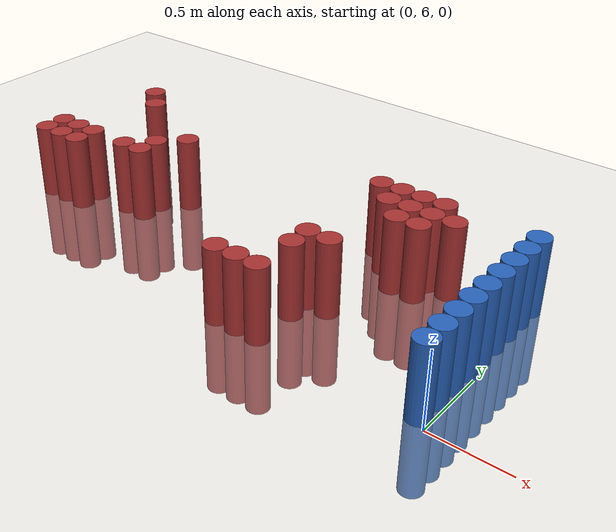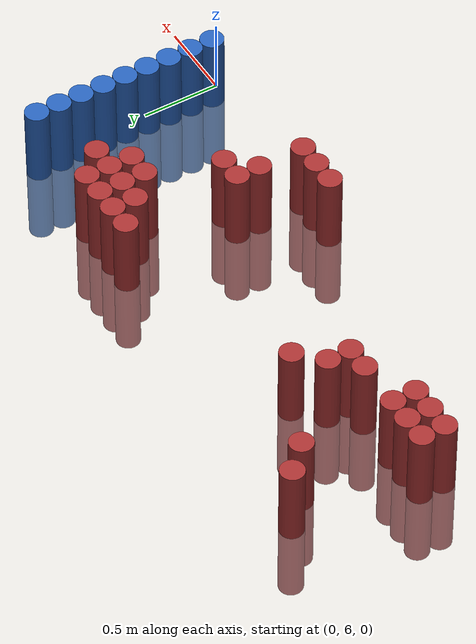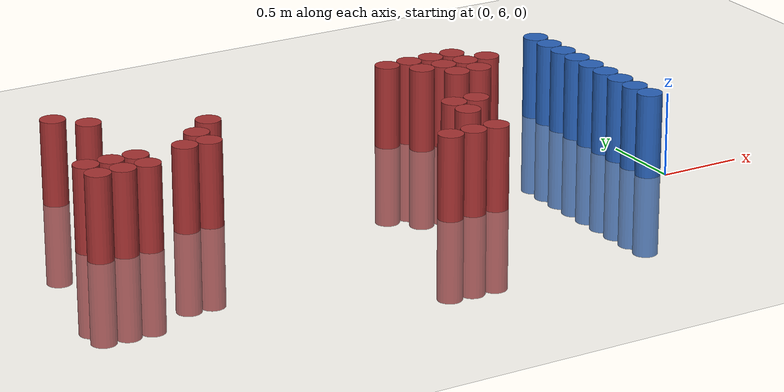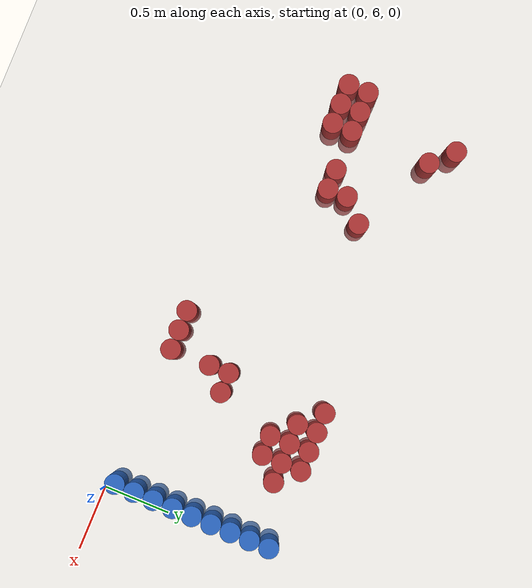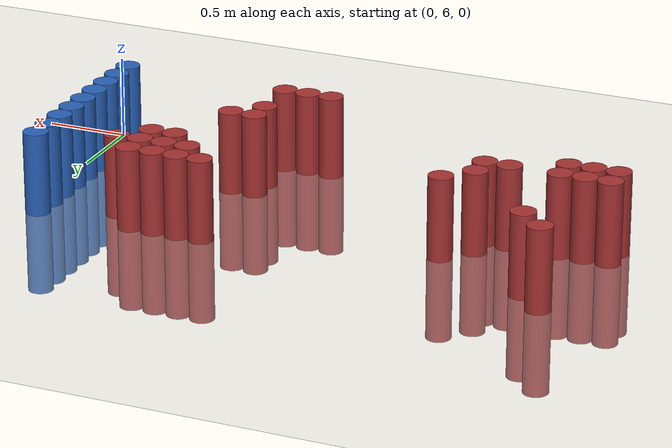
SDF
<sdf version="1.6">
 <world name="default">
  <model name="ground_plane">
   <static>1</static>
   <link name="link">
    <collision name="collision">
     <geometry><plane><normal>0 0 1</normal><size>100 100</size></plane></geometry>
     <surface><friction><ode><mu>100</mu><mu2>50</mu2></ode></friction></surface>
    </collision>
    <visual name="visual">
     <cast_shadows>0</cast_shadows>
     <geometry><plane><normal>0 0 1</normal><size>100 100</size></plane></geometry>
     <material>
      <script><uri>file://media/materials/scripts/gazebo.material</uri><name>Gazebo/Grey</name></script>
     </material>
    </visual>
   </link>
  </model>
  <model name="unit_cylinder_196">
   <static>1</static>
   <pose>-3.375000 6.525000 0.000000 0.000000 0.000000 0.000000</pose>
   <link name="link">
    <inertial>
     <mass>1</mass>
     <inertia><ixx>0.145833</ixx><ixy>0</ixy><ixz>0</ixz><iyy>0.145833</iyy><iyz>0</iyz><izz>0.125</izz></inertia>
    </inertial>
    <collision name="collision">
     <geometry><cylinder><radius>0.075000</radius><length>1</length></cylinder></geometry>
    </collision>
    <visual name="visual">
     <geometry><cylinder><radius>0.075000</radius><length>1</length></cylinder></geometry>
     <material>
      <ambient>0.648000 0.192000 0.192000 1</ambient>
      <diffuse>0.648000 0.192000 0.192000 1</diffuse>
     </material>
     <material>
      <script><name>Gazebo/Grey</name><uri>file://media/materials/scripts/gazebo.material</uri></script>
     </material>
    </visual>
    <sensor name="sensor_contact" type="contact"><contact><collision>collision</collision></contact></sensor>
   </link>
   <plugin filename="gz-sim-touchplugin-system" name="gz::sim::systems::TouchPlugin">
    <target>robot</target>
    <namespace>robot</namespace>
    <time>0.001</time>
    <enabled>true</enabled>
   </plugin>
  </model>
  <model name="unit_cylinder_197">
   <static>1</static>
   <pose>-3.375000 6.675000 0.000000 0.000000 0.000000 0.000000</pose>
   <link name="link">
    <inertial>
     <mass>1</mass>
     <inertia><ixx>0.145833</ixx><ixy>0</ixy><ixz>0</ixz><iyy>0.145833</iyy><iyz>0</iyz><izz>0.125</izz></inertia>
    </inertial>
    <collision name="collision">
     <geometry><cylinder><radius>0.075000</radius><length>1</length></cylinder></geometry>
    </collision>
    <visual name="visual">
     <geometry><cylinder><radius>0.075000</radius><length>1</length></cylinder></geometry>
     <material>
      <ambient>0.648000 0.192000 0.192000 1</ambient>
      <diffuse>0.648000 0.192000 0.192000 1</diffuse>
     </material>
     <material>
      <script><name>Gazebo/Grey</name><uri>file://media/materials/scripts/gazebo.material</uri></script>
     </material>
    </visual>
    <sensor name="sensor_contact" type="contact"><contact><collision>collision</collision></contact></sensor>
   </link>
   <plugin filename="gz-sim-touchplugin-system" name="gz::sim::systems::TouchPlugin">
    <target>robot</target>
    <namespace>robot</namespace>
    <time>0.001</time>
    <enabled>true</enabled>
   </plugin>
  </model>
  <model name="unit_cylinder_205">
   <static>1</static>
   <pose>-3.225000 6.525000 0.000000 0.000000 0.000000 0.000000</pose>
   <link name="link">
    <inertial>
     <mass>1</mass>
     <inertia><ixx>0.145833</ixx><ixy>0</ixy><ixz>0</ixz><iyy>0.145833</iyy><iyz>0</iyz><izz>0.125</izz></inertia>
    </inertial>
    <collision name="collision">
     <geometry><cylinder><radius>0.075000</radius><length>1</length></cylinder></geometry>
    </collision>
    <visual name="visual">
     <geometry><cylinder><radius>0.075000</radius><length>1</length></cylinder></geometry>
     <material>
      <ambient>0.648000 0.192000 0.192000 1</ambient>
      <diffuse>0.648000 0.192000 0.192000 1</diffuse>
     </material>
     <material>
      <script><name>Gazebo/Grey</name><uri>file://media/materials/scripts/gazebo.material</uri></script>
     </material>
    </visual>
    <sensor name="sensor_contact" type="contact"><contact><collision>collision</collision></contact></sensor>
   </link>
   <plugin filename="gz-sim-touchplugin-system" name="gz::sim::systems::TouchPlugin">
    <target>robot</target>
    <namespace>robot</namespace>
    <time>0.001</time>
    <enabled>true</enabled>
   </plugin>
  </model>
  <model name="unit_cylinder_206">
   <static>1</static>
   <pose>-3.225000 6.675000 0.000000 0.000000 0.000000 0.000000</pose>
   <link name="link">
    <inertial>
     <mass>1</mass>
     <inertia><ixx>0.145833</ixx><ixy>0</ixy><ixz>0</ixz><iyy>0.145833</iyy><iyz>0</iyz><izz>0.125</izz></inertia>
    </inertial>
    <collision name="collision">
     <geometry><cylinder><radius>0.075000</radius><length>1</length></cylinder></geometry>
    </collision>
    <visual name="visual">
     <geometry><cylinder><radius>0.075000</radius><length>1</length></cylinder></geometry>
     <material>
      <ambient>0.648000 0.192000 0.192000 1</ambient>
      <diffuse>0.648000 0.192000 0.192000 1</diffuse>
     </material>
     <material>
      <script><name>Gazebo/Grey</name><uri>file://media/materials/scripts/gazebo.material</uri></script>
     </material>
    </visual>
    <sensor name="sensor_contact" type="contact"><contact><collision>collision</collision></contact></sensor>
   </link>
   <plugin filename="gz-sim-touchplugin-system" name="gz::sim::systems::TouchPlugin">
    <target>robot</target>
    <namespace>robot</namespace>
    <time>0.001</time>
    <enabled>true</enabled>
   </plugin>
  </model>
  <model name="unit_cylinder_207">
   <static>1</static>
   <pose>-3.225000 7.425000 0.000000 0.000000 0.000000 0.000000</pose>
   <link name="link">
    <inertial>
     <mass>1</mass>
     <inertia><ixx>0.145833</ixx><ixy>0</ixy><ixz>0</ixz><iyy>0.145833</iyy><iyz>0</iyz><izz>0.125</izz></inertia>
    </inertial>
    <collision name="collision">
     <geometry><cylinder><radius>0.075000</radius><length>1</length></cylinder></geometry>
    </collision>
    <visual name="visual">
     <geometry><cylinder><radius>0.075000</radius><length>1</length></cylinder></geometry>
     <material>
      <ambient>0.648000 0.192000 0.192000 1</ambient>
      <diffuse>0.648000 0.192000 0.192000 1</diffuse>
     </material>
     <material>
      <script><name>Gazebo/Grey</name><uri>file://media/materials/scripts/gazebo.material</uri></script>
     </material>
    </visual>
    <sensor name="sensor_contact" type="contact"><contact><collision>collision</collision></contact></sensor>
   </link>
   <plugin filename="gz-sim-touchplugin-system" name="gz::sim::systems::TouchPlugin">
    <target>robot</target>
    <namespace>robot</namespace>
    <time>0.001</time>
    <enabled>true</enabled>
   </plugin>
  </model>
  <model name="unit_cylinder_210">
   <static>1</static>
   <pose>-3.075000 6.525000 0.000000 0.000000 0.000000 0.000000</pose>
   <link name="link">
    <inertial>
     <mass>1</mass>
     <inertia><ixx>0.145833</ixx><ixy>0</ixy><ixz>0</ixz><iyy>0.145833</iyy><iyz>0</iyz><izz>0.125</izz></inertia>
    </inertial>
    <collision name="collision">
     <geometry><cylinder><radius>0.075000</radius><length>1</length></cylinder></geometry>
    </collision>
    <visual name="visual">
     <geometry><cylinder><radius>0.075000</radius><length>1</length></cylinder></geometry>
     <material>
      <ambient>0.648000 0.192000 0.192000 1</ambient>
      <diffuse>0.648000 0.192000 0.192000 1</diffuse>
     </material>
     <material>
      <script><name>Gazebo/Grey</name><uri>file://media/materials/scripts/gazebo.material</uri></script>
     </material>
    </visual>
    <sensor name="sensor_contact" type="contact"><contact><collision>collision</collision></contact></sensor>
   </link>
   <plugin filename="gz-sim-touchplugin-system" name="gz::sim::systems::TouchPlugin">
    <target>robot</target>
    <namespace>robot</namespace>
    <time>0.001</time>
    <enabled>true</enabled>
   </plugin>
  </model>
  <model name="unit_cylinder_211">
   <static>1</static>
   <pose>-3.075000 6.675000 0.000000 0.000000 0.000000 0.000000</pose>
   <link name="link">
    <inertial>
     <mass>1</mass>
     <inertia><ixx>0.145833</ixx><ixy>0</ixy><ixz>0</ixz><iyy>0.145833</iyy><iyz>0</iyz><izz>0.125</izz></inertia>
    </inertial>
    <collision name="collision">
     <geometry><cylinder><radius>0.075000</radius><length>1</length></cylinder></geometry>
    </collision>
    <visual name="visual">
     <geometry><cylinder><radius>0.075000</radius><length>1</length></cylinder></geometry>
     <material>
      <ambient>0.648000 0.192000 0.192000 1</ambient>
      <diffuse>0.648000 0.192000 0.192000 1</diffuse>
     </material>
     <material>
      <script><name>Gazebo/Grey</name><uri>file://media/materials/scripts/gazebo.material</uri></script>
     </material>
    </visual>
    <sensor name="sensor_contact" type="contact"><contact><collision>collision</collision></contact></sensor>
   </link>
   <plugin filename="gz-sim-touchplugin-system" name="gz::sim::systems::TouchPlugin">
    <target>robot</target>
    <namespace>robot</namespace>
    <time>0.001</time>
    <enabled>true</enabled>
   </plugin>
  </model>
  <model name="unit_cylinder_212">
   <static>1</static>
   <pose>-3.075000 7.275000 0.000000 0.000000 0.000000 0.000000</pose>
   <link name="link">
    <inertial>
     <mass>1</mass>
     <inertia><ixx>0.145833</ixx><ixy>0</ixy><ixz>0</ixz><iyy>0.145833</iyy><iyz>0</iyz><izz>0.125</izz></inertia>
    </inertial>
    <collision name="collision">
     <geometry><cylinder><radius>0.075000</radius><length>1</length></cylinder></geometry>
    </collision>
    <visual name="visual">
     <geometry><cylinder><radius>0.075000</radius><length>1</length></cylinder></geometry>
     <material>
      <ambient>0.648000 0.192000 0.192000 1</ambient>
      <diffuse>0.648000 0.192000 0.192000 1</diffuse>
     </material>
     <material>
      <script><name>Gazebo/Grey</name><uri>file://media/materials/scripts/gazebo.material</uri></script>
     </material>
    </visual>
    <sensor name="sensor_contact" type="contact"><contact><collision>collision</collision></contact></sensor>
   </link>
   <plugin filename="gz-sim-touchplugin-system" name="gz::sim::systems::TouchPlugin">
    <target>robot</target>
    <namespace>robot</namespace>
    <time>0.001</time>
    <enabled>true</enabled>
   </plugin>
  </model>
  <model name="unit_cylinder_219">
   <static>1</static>
   <pose>-2.775000 6.675000 0.000000 0.000000 0.000000 0.000000</pose>
   <link name="link">
    <inertial>
     <mass>1</mass>
     <inertia><ixx>0.145833</ixx><ixy>0</ixy><ixz>0</ixz><iyy>0.145833</iyy><iyz>0</iyz><izz>0.125</izz></inertia>
    </inertial>
    <collision name="collision">
     <geometry><cylinder><radius>0.075000</radius><length>1</length></cylinder></geometry>
    </collision>
    <visual name="visual">
     <geometry><cylinder><radius>0.075000</radius><length>1</length></cylinder></geometry>
     <material>
      <ambient>0.648000 0.192000 0.192000 1</ambient>
      <diffuse>0.648000 0.192000 0.192000 1</diffuse>
     </material>
     <material>
      <script><name>Gazebo/Grey</name><uri>file://media/materials/scripts/gazebo.material</uri></script>
     </material>
    </visual>
    <sensor name="sensor_contact" type="contact"><contact><collision>collision</collision></contact></sensor>
   </link>
   <plugin filename="gz-sim-touchplugin-system" name="gz::sim::systems::TouchPlugin">
    <target>robot</target>
    <namespace>robot</namespace>
    <time>0.001</time>
    <enabled>true</enabled>
   </plugin>
  </model>
  <model name="unit_cylinder_222">
   <static>1</static>
   <pose>-2.625000 6.675000 0.000000 0.000000 0.000000 0.000000</pose>
   <link name="link">
    <inertial>
     <mass>1</mass>
     <inertia><ixx>0.145833</ixx><ixy>0</ixy><ixz>0</ixz><iyy>0.145833</iyy><iyz>0</iyz><izz>0.125</izz></inertia>
    </inertial>
    <collision name="collision">
     <geometry><cylinder><radius>0.075000</radius><length>1</length></cylinder></geometry>
    </collision>
    <visual name="visual">
     <geometry><cylinder><radius>0.075000</radius><length>1</length></cylinder></geometry>
     <material>
      <ambient>0.648000 0.192000 0.192000 1</ambient>
      <diffuse>0.648000 0.192000 0.192000 1</diffuse>
     </material>
     <material>
      <script><name>Gazebo/Grey</name><uri>file://media/materials/scripts/gazebo.material</uri></script>
     </material>
    </visual>
    <sensor name="sensor_contact" type="contact"><contact><collision>collision</collision></contact></sensor>
   </link>
   <plugin filename="gz-sim-touchplugin-system" name="gz::sim::systems::TouchPlugin">
    <target>robot</target>
    <namespace>robot</namespace>
    <time>0.001</time>
    <enabled>true</enabled>
   </plugin>
  </model>
  <model name="unit_cylinder_223">
   <static>1</static>
   <pose>-2.625000 6.825000 0.000000 0.000000 0.000000 0.000000</pose>
   <link name="link">
    <inertial>
     <mass>1</mass>
     <inertia><ixx>0.145833</ixx><ixy>0</ixy><ixz>0</ixz><iyy>0.145833</iyy><iyz>0</iyz><izz>0.125</izz></inertia>
    </inertial>
    <collision name="collision">
     <geometry><cylinder><radius>0.075000</radius><length>1</length></cylinder></geometry>
    </collision>
    <visual name="visual">
     <geometry><cylinder><radius>0.075000</radius><length>1</length></cylinder></geometry>
     <material>
      <ambient>0.648000 0.192000 0.192000 1</ambient>
      <diffuse>0.648000 0.192000 0.192000 1</diffuse>
     </material>
     <material>
      <script><name>Gazebo/Grey</name><uri>file://media/materials/scripts/gazebo.material</uri></script>
     </material>
    </visual>
    <sensor name="sensor_contact" type="contact"><contact><collision>collision</collision></contact></sensor>
   </link>
   <plugin filename="gz-sim-touchplugin-system" name="gz::sim::systems::TouchPlugin">
    <target>robot</target>
    <namespace>robot</namespace>
    <time>0.001</time>
    <enabled>true</enabled>
   </plugin>
  </model>
  <model name="unit_cylinder_226">
   <static>1</static>
   <pose>-2.475000 6.975000 0.000000 0.000000 0.000000 0.000000</pose>
   <link name="link">
    <inertial>
     <mass>1</mass>
     <inertia><ixx>0.145833</ixx><ixy>0</ixy><ixz>0</ixz><iyy>0.145833</iyy><iyz>0</iyz><izz>0.125</izz></inertia>
    </inertial>
    <collision name="collision">
     <geometry><cylinder><radius>0.075000</radius><length>1</length></cylinder></geometry>
    </collision>
    <visual name="visual">
     <geometry><cylinder><radius>0.075000</radius><length>1</length></cylinder></geometry>
     <material>
      <ambient>0.648000 0.192000 0.192000 1</ambient>
      <diffuse>0.648000 0.192000 0.192000 1</diffuse>
     </material>
     <material>
      <script><name>Gazebo/Grey</name><uri>file://media/materials/scripts/gazebo.material</uri></script>
     </material>
    </visual>
    <sensor name="sensor_contact" type="contact"><contact><collision>collision</collision></contact></sensor>
   </link>
   <plugin filename="gz-sim-touchplugin-system" name="gz::sim::systems::TouchPlugin">
    <target>robot</target>
    <namespace>robot</namespace>
    <time>0.001</time>
    <enabled>true</enabled>
   </plugin>
  </model>
  <model name="unit_cylinder_242">
   <static>1</static>
   <pose>-1.425000 6.075000 0.000000 0.000000 0.000000 0.000000</pose>
   <link name="link">
    <inertial>
     <mass>1</mass>
     <inertia><ixx>0.145833</ixx><ixy>0</ixy><ixz>0</ixz><iyy>0.145833</iyy><iyz>0</iyz><izz>0.125</izz></inertia>
    </inertial>
    <collision name="collision">
     <geometry><cylinder><radius>0.075000</radius><length>1</length></cylinder></geometry>
    </collision>
    <visual name="visual">
     <geometry><cylinder><radius>0.075000</radius><length>1</length></cylinder></geometry>
     <material>
      <ambient>0.648000 0.192000 0.192000 1</ambient>
      <diffuse>0.648000 0.192000 0.192000 1</diffuse>
     </material>
     <material>
      <script><name>Gazebo/Grey</name><uri>file://media/materials/scripts/gazebo.material</uri></script>
     </material>
    </visual>
    <sensor name="sensor_contact" type="contact"><contact><collision>collision</collision></contact></sensor>
   </link>
   <plugin filename="gz-sim-touchplugin-system" name="gz::sim::systems::TouchPlugin">
    <target>robot</target>
    <namespace>robot</namespace>
    <time>0.001</time>
    <enabled>true</enabled>
   </plugin>
  </model>
  <model name="unit_cylinder_244">
   <static>1</static>
   <pose>-1.275000 6.075000 0.000000 0.000000 0.000000 0.000000</pose>
   <link name="link">
    <inertial>
     <mass>1</mass>
     <inertia><ixx>0.145833</ixx><ixy>0</ixy><ixz>0</ixz><iyy>0.145833</iyy><iyz>0</iyz><izz>0.125</izz></inertia>
    </inertial>
    <collision name="collision">
     <geometry><cylinder><radius>0.075000</radius><length>1</length></cylinder></geometry>
    </collision>
    <visual name="visual">
     <geometry><cylinder><radius>0.075000</radius><length>1</length></cylinder></geometry>
     <material>
      <ambient>0.648000 0.192000 0.192000 1</ambient>
      <diffuse>0.648000 0.192000 0.192000 1</diffuse>
     </material>
     <material>
      <script><name>Gazebo/Grey</name><uri>file://media/materials/scripts/gazebo.material</uri></script>
     </material>
    </visual>
    <sensor name="sensor_contact" type="contact"><contact><collision>collision</collision></contact></sensor>
   </link>
   <plugin filename="gz-sim-touchplugin-system" name="gz::sim::systems::TouchPlugin">
    <target>robot</target>
    <namespace>robot</namespace>
    <time>0.001</time>
    <enabled>true</enabled>
   </plugin>
  </model>
  <model name="unit_cylinder_245">
   <static>1</static>
   <pose>-1.125000 6.075000 0.000000 0.000000 0.000000 0.000000</pose>
   <link name="link">
    <inertial>
     <mass>1</mass>
     <inertia><ixx>0.145833</ixx><ixy>0</ixy><ixz>0</ixz><iyy>0.145833</iyy><iyz>0</iyz><izz>0.125</izz></inertia>
    </inertial>
    <collision name="collision">
     <geometry><cylinder><radius>0.075000</radius><length>1</length></cylinder></geometry>
    </collision>
    <visual name="visual">
     <geometry><cylinder><radius>0.075000</radius><length>1</length></cylinder></geometry>
     <material>
      <ambient>0.648000 0.192000 0.192000 1</ambient>
      <diffuse>0.648000 0.192000 0.192000 1</diffuse>
     </material>
     <material>
      <script><name>Gazebo/Grey</name><uri>file://media/materials/scripts/gazebo.material</uri></script>
     </material>
    </visual>
    <sensor name="sensor_contact" type="contact"><contact><collision>collision</collision></contact></sensor>
   </link>
   <plugin filename="gz-sim-touchplugin-system" name="gz::sim::systems::TouchPlugin">
    <target>robot</target>
    <namespace>robot</namespace>
    <time>0.001</time>
    <enabled>true</enabled>
   </plugin>
  </model>
  <model name="unit_cylinder_246">
   <static>1</static>
   <pose>-1.125000 6.375000 0.000000 0.000000 0.000000 0.000000</pose>
   <link name="link">
    <inertial>
     <mass>1</mass>
     <inertia><ixx>0.145833</ixx><ixy>0</ixy><ixz>0</ixz><iyy>0.145833</iyy><iyz>0</iyz><izz>0.125</izz></inertia>
    </inertial>
    <collision name="collision">
     <geometry><cylinder><radius>0.075000</radius><length>1</length></cylinder></geometry>
    </collision>
    <visual name="visual">
     <geometry><cylinder><radius>0.075000</radius><length>1</length></cylinder></geometry>
     <material>
      <ambient>0.648000 0.192000 0.192000 1</ambient>
      <diffuse>0.648000 0.192000 0.192000 1</diffuse>
     </material>
     <material>
      <script><name>Gazebo/Grey</name><uri>file://media/materials/scripts/gazebo.material</uri></script>
     </material>
    </visual>
    <sensor name="sensor_contact" type="contact"><contact><collision>collision</collision></contact></sensor>
   </link>
   <plugin filename="gz-sim-touchplugin-system" name="gz::sim::systems::TouchPlugin">
    <target>robot</target>
    <namespace>robot</namespace>
    <time>0.001</time>
    <enabled>true</enabled>
   </plugin>
  </model>
  <model name="unit_cylinder_247">
   <static>1</static>
   <pose>-1.125000 6.525000 0.000000 0.000000 0.000000 0.000000</pose>
   <link name="link">
    <inertial>
     <mass>1</mass>
     <inertia><ixx>0.145833</ixx><ixy>0</ixy><ixz>0</ixz><iyy>0.145833</iyy><iyz>0</iyz><izz>0.125</izz></inertia>
    </inertial>
    <collision name="collision">
     <geometry><cylinder><radius>0.075000</radius><length>1</length></cylinder></geometry>
    </collision>
    <visual name="visual">
     <geometry><cylinder><radius>0.075000</radius><length>1</length></cylinder></geometry>
     <material>
      <ambient>0.648000 0.192000 0.192000 1</ambient>
      <diffuse>0.648000 0.192000 0.192000 1</diffuse>
     </material>
     <material>
      <script><name>Gazebo/Grey</name><uri>file://media/materials/scripts/gazebo.material</uri></script>
     </material>
    </visual>
    <sensor name="sensor_contact" type="contact"><contact><collision>collision</collision></contact></sensor>
   </link>
   <plugin filename="gz-sim-touchplugin-system" name="gz::sim::systems::TouchPlugin">
    <target>robot</target>
    <namespace>robot</namespace>
    <time>0.001</time>
    <enabled>true</enabled>
   </plugin>
  </model>
  <model name="unit_cylinder_248">
   <static>1</static>
   <pose>-1.125000 7.275000 0.000000 0.000000 0.000000 0.000000</pose>
   <link name="link">
    <inertial>
     <mass>1</mass>
     <inertia><ixx>0.145833</ixx><ixy>0</ixy><ixz>0</ixz><iyy>0.145833</iyy><iyz>0</iyz><izz>0.125</izz></inertia>
    </inertial>
    <collision name="collision">
     <geometry><cylinder><radius>0.075000</radius><length>1</length></cylinder></geometry>
    </collision>
    <visual name="visual">
     <geometry><cylinder><radius>0.075000</radius><length>1</length></cylinder></geometry>
     <material>
      <ambient>0.648000 0.192000 0.192000 1</ambient>
      <diffuse>0.648000 0.192000 0.192000 1</diffuse>
     </material>
     <material>
      <script><name>Gazebo/Grey</name><uri>file://media/materials/scripts/gazebo.material</uri></script>
     </material>
    </visual>
    <sensor name="sensor_contact" type="contact"><contact><collision>collision</collision></contact></sensor>
   </link>
   <plugin filename="gz-sim-touchplugin-system" name="gz::sim::systems::TouchPlugin">
    <target>robot</target>
    <namespace>robot</namespace>
    <time>0.001</time>
    <enabled>true</enabled>
   </plugin>
  </model>
  <model name="unit_cylinder_250">
   <static>1</static>
   <pose>-0.975000 6.525000 0.000000 0.000000 0.000000 0.000000</pose>
   <link name="link">
    <inertial>
     <mass>1</mass>
     <inertia><ixx>0.145833</ixx><ixy>0</ixy><ixz>0</ixz><iyy>0.145833</iyy><iyz>0</iyz><izz>0.125</izz></inertia>
    </inertial>
    <collision name="collision">
     <geometry><cylinder><radius>0.075000</radius><length>1</length></cylinder></geometry>
    </collision>
    <visual name="visual">
     <geometry><cylinder><radius>0.075000</radius><length>1</length></cylinder></geometry>
     <material>
      <ambient>0.648000 0.192000 0.192000 1</ambient>
      <diffuse>0.648000 0.192000 0.192000 1</diffuse>
     </material>
     <material>
      <script><name>Gazebo/Grey</name><uri>file://media/materials/scripts/gazebo.material</uri></script>
     </material>
    </visual>
    <sensor name="sensor_contact" type="contact"><contact><collision>collision</collision></contact></sensor>
   </link>
   <plugin filename="gz-sim-touchplugin-system" name="gz::sim::systems::TouchPlugin">
    <target>robot</target>
    <namespace>robot</namespace>
    <time>0.001</time>
    <enabled>true</enabled>
   </plugin>
  </model>
  <model name="unit_cylinder_251">
   <static>1</static>
   <pose>-0.975000 7.125000 0.000000 0.000000 0.000000 0.000000</pose>
   <link name="link">
    <inertial>
     <mass>1</mass>
     <inertia><ixx>0.145833</ixx><ixy>0</ixy><ixz>0</ixz><iyy>0.145833</iyy><iyz>0</iyz><izz>0.125</izz></inertia>
    </inertial>
    <collision name="collision">
     <geometry><cylinder><radius>0.075000</radius><length>1</length></cylinder></geometry>
    </collision>
    <visual name="visual">
     <geometry><cylinder><radius>0.075000</radius><length>1</length></cylinder></geometry>
     <material>
      <ambient>0.648000 0.192000 0.192000 1</ambient>
      <diffuse>0.648000 0.192000 0.192000 1</diffuse>
     </material>
     <material>
      <script><name>Gazebo/Grey</name><uri>file://media/materials/scripts/gazebo.material</uri></script>
     </material>
    </visual>
    <sensor name="sensor_contact" type="contact"><contact><collision>collision</collision></contact></sensor>
   </link>
   <plugin filename="gz-sim-touchplugin-system" name="gz::sim::systems::TouchPlugin">
    <target>robot</target>
    <namespace>robot</namespace>
    <time>0.001</time>
    <enabled>true</enabled>
   </plugin>
  </model>
  <model name="unit_cylinder_252">
   <static>1</static>
   <pose>-0.975000 7.275000 0.000000 0.000000 0.000000 0.000000</pose>
   <link name="link">
    <inertial>
     <mass>1</mass>
     <inertia><ixx>0.145833</ixx><ixy>0</ixy><ixz>0</ixz><iyy>0.145833</iyy><iyz>0</iyz><izz>0.125</izz></inertia>
    </inertial>
    <collision name="collision">
     <geometry><cylinder><radius>0.075000</radius><length>1</length></cylinder></geometry>
    </collision>
    <visual name="visual">
     <geometry><cylinder><radius>0.075000</radius><length>1</length></cylinder></geometry>
     <material>
      <ambient>0.648000 0.192000 0.192000 1</ambient>
      <diffuse>0.648000 0.192000 0.192000 1</diffuse>
     </material>
     <material>
      <script><name>Gazebo/Grey</name><uri>file://media/materials/scripts/gazebo.material</uri></script>
     </material>
    </visual>
    <sensor name="sensor_contact" type="contact"><contact><collision>collision</collision></contact></sensor>
   </link>
   <plugin filename="gz-sim-touchplugin-system" name="gz::sim::systems::TouchPlugin">
    <target>robot</target>
    <namespace>robot</namespace>
    <time>0.001</time>
    <enabled>true</enabled>
   </plugin>
  </model>
  <model name="unit_cylinder_258">
   <static>1</static>
   <pose>-0.825000 6.975000 0.000000 0.000000 0.000000 0.000000</pose>
   <link name="link">
    <inertial>
     <mass>1</mass>
     <inertia><ixx>0.145833</ixx><ixy>0</ixy><ixz>0</ixz><iyy>0.145833</iyy><iyz>0</iyz><izz>0.125</izz></inertia>
    </inertial>
    <collision name="collision">
     <geometry><cylinder><radius>0.075000</radius><length>1</length></cylinder></geometry>
    </collision>
    <visual name="visual">
     <geometry><cylinder><radius>0.075000</radius><length>1</length></cylinder></geometry>
     <material>
      <ambient>0.648000 0.192000 0.192000 1</ambient>
      <diffuse>0.648000 0.192000 0.192000 1</diffuse>
     </material>
     <material>
      <script><name>Gazebo/Grey</name><uri>file://media/materials/scripts/gazebo.material</uri></script>
     </material>
    </visual>
    <sensor name="sensor_contact" type="contact"><contact><collision>collision</collision></contact></sensor>
   </link>
   <plugin filename="gz-sim-touchplugin-system" name="gz::sim::systems::TouchPlugin">
    <target>robot</target>
    <namespace>robot</namespace>
    <time>0.001</time>
    <enabled>true</enabled>
   </plugin>
  </model>
  <model name="unit_cylinder_259">
   <static>1</static>
   <pose>-0.825000 7.125000 0.000000 0.000000 0.000000 0.000000</pose>
   <link name="link">
    <inertial>
     <mass>1</mass>
     <inertia><ixx>0.145833</ixx><ixy>0</ixy><ixz>0</ixz><iyy>0.145833</iyy><iyz>0</iyz><izz>0.125</izz></inertia>
    </inertial>
    <collision name="collision">
     <geometry><cylinder><radius>0.075000</radius><length>1</length></cylinder></geometry>
    </collision>
    <visual name="visual">
     <geometry><cylinder><radius>0.075000</radius><length>1</length></cylinder></geometry>
     <material>
      <ambient>0.648000 0.192000 0.192000 1</ambient>
      <diffuse>0.648000 0.192000 0.192000 1</diffuse>
     </material>
     <material>
      <script><name>Gazebo/Grey</name><uri>file://media/materials/scripts/gazebo.material</uri></script>
     </material>
    </visual>
    <sensor name="sensor_contact" type="contact"><contact><collision>collision</collision></contact></sensor>
   </link>
   <plugin filename="gz-sim-touchplugin-system" name="gz::sim::systems::TouchPlugin">
    <target>robot</target>
    <namespace>robot</namespace>
    <time>0.001</time>
    <enabled>true</enabled>
   </plugin>
  </model>
  <model name="unit_cylinder_260">
   <static>1</static>
   <pose>-0.825000 7.275000 0.000000 0.000000 0.000000 0.000000</pose>
   <link name="link">
    <inertial>
     <mass>1</mass>
     <inertia><ixx>0.145833</ixx><ixy>0</ixy><ixz>0</ixz><iyy>0.145833</iyy><iyz>0</iyz><izz>0.125</izz></inertia>
    </inertial>
    <collision name="collision">
     <geometry><cylinder><radius>0.075000</radius><length>1</length></cylinder></geometry>
    </collision>
    <visual name="visual">
     <geometry><cylinder><radius>0.075000</radius><length>1</length></cylinder></geometry>
     <material>
      <ambient>0.648000 0.192000 0.192000 1</ambient>
      <diffuse>0.648000 0.192000 0.192000 1</diffuse>
     </material>
     <material>
      <script><name>Gazebo/Grey</name><uri>file://media/materials/scripts/gazebo.material</uri></script>
     </material>
    </visual>
    <sensor name="sensor_contact" type="contact"><contact><collision>collision</collision></contact></sensor>
   </link>
   <plugin filename="gz-sim-touchplugin-system" name="gz::sim::systems::TouchPlugin">
    <target>robot</target>
    <namespace>robot</namespace>
    <time>0.001</time>
    <enabled>true</enabled>
   </plugin>
  </model>
  <model name="unit_cylinder_268">
   <static>1</static>
   <pose>-0.675000 6.975000 0.000000 0.000000 0.000000 0.000000</pose>
   <link name="link">
    <inertial>
     <mass>1</mass>
     <inertia><ixx>0.145833</ixx><ixy>0</ixy><ixz>0</ixz><iyy>0.145833</iyy><iyz>0</iyz><izz>0.125</izz></inertia>
    </inertial>
    <collision name="collision">
     <geometry><cylinder><radius>0.075000</radius><length>1</length></cylinder></geometry>
    </collision>
    <visual name="visual">
     <geometry><cylinder><radius>0.075000</radius><length>1</length></cylinder></geometry>
     <material>
      <ambient>0.648000 0.192000 0.192000 1</ambient>
      <diffuse>0.648000 0.192000 0.192000 1</diffuse>
     </material>
     <material>
      <script><name>Gazebo/Grey</name><uri>file://media/materials/scripts/gazebo.material</uri></script>
     </material>
    </visual>
    <sensor name="sensor_contact" type="contact"><contact><collision>collision</collision></contact></sensor>
   </link>
   <plugin filename="gz-sim-touchplugin-system" name="gz::sim::systems::TouchPlugin">
    <target>robot</target>
    <namespace>robot</namespace>
    <time>0.001</time>
    <enabled>true</enabled>
   </plugin>
  </model>
  <model name="unit_cylinder_269">
   <static>1</static>
   <pose>-0.675000 7.125000 0.000000 0.000000 0.000000 0.000000</pose>
   <link name="link">
    <inertial>
     <mass>1</mass>
     <inertia><ixx>0.145833</ixx><ixy>0</ixy><ixz>0</ixz><iyy>0.145833</iyy><iyz>0</iyz><izz>0.125</izz></inertia>
    </inertial>
    <collision name="collision">
     <geometry><cylinder><radius>0.075000</radius><length>1</length></cylinder></geometry>
    </collision>
    <visual name="visual">
     <geometry><cylinder><radius>0.075000</radius><length>1</length></cylinder></geometry>
     <material>
      <ambient>0.648000 0.192000 0.192000 1</ambient>
      <diffuse>0.648000 0.192000 0.192000 1</diffuse>
     </material>
     <material>
      <script><name>Gazebo/Grey</name><uri>file://media/materials/scripts/gazebo.material</uri></script>
     </material>
    </visual>
    <sensor name="sensor_contact" type="contact"><contact><collision>collision</collision></contact></sensor>
   </link>
   <plugin filename="gz-sim-touchplugin-system" name="gz::sim::systems::TouchPlugin">
    <target>robot</target>
    <namespace>robot</namespace>
    <time>0.001</time>
    <enabled>true</enabled>
   </plugin>
  </model>
  <model name="unit_cylinder_270">
   <static>1</static>
   <pose>-0.675000 7.275000 0.000000 0.000000 0.000000 0.000000</pose>
   <link name="link">
    <inertial>
     <mass>1</mass>
     <inertia><ixx>0.145833</ixx><ixy>0</ixy><ixz>0</ixz><iyy>0.145833</iyy><iyz>0</iyz><izz>0.125</izz></inertia>
    </inertial>
    <collision name="collision">
     <geometry><cylinder><radius>0.075000</radius><length>1</length></cylinder></geometry>
    </collision>
    <visual name="visual">
     <geometry><cylinder><radius>0.075000</radius><length>1</length></cylinder></geometry>
     <material>
      <ambient>0.648000 0.192000 0.192000 1</ambient>
      <diffuse>0.648000 0.192000 0.192000 1</diffuse>
     </material>
     <material>
      <script><name>Gazebo/Grey</name><uri>file://media/materials/scripts/gazebo.material</uri></script>
     </material>
    </visual>
    <sensor name="sensor_contact" type="contact"><contact><collision>collision</collision></contact></sensor>
   </link>
   <plugin filename="gz-sim-touchplugin-system" name="gz::sim::systems::TouchPlugin">
    <target>robot</target>
    <namespace>robot</namespace>
    <time>0.001</time>
    <enabled>true</enabled>
   </plugin>
  </model>
  <model name="unit_cylinder_277">
   <static>1</static>
   <pose>-0.525000 7.125000 0.000000 0.000000 0.000000 0.000000</pose>
   <link name="link">
    <inertial>
     <mass>1</mass>
     <inertia><ixx>0.145833</ixx><ixy>0</ixy><ixz>0</ixz><iyy>0.145833</iyy><iyz>0</iyz><izz>0.125</izz></inertia>
    </inertial>
    <collision name="collision">
     <geometry><cylinder><radius>0.075000</radius><length>1</length></cylinder></geometry>
    </collision>
    <visual name="visual">
     <geometry><cylinder><radius>0.075000</radius><length>1</length></cylinder></geometry>
     <material>
      <ambient>0.648000 0.192000 0.192000 1</ambient>
      <diffuse>0.648000 0.192000 0.192000 1</diffuse>
     </material>
     <material>
      <script><name>Gazebo/Grey</name><uri>file://media/materials/scripts/gazebo.material</uri></script>
     </material>
    </visual>
    <sensor name="sensor_contact" type="contact"><contact><collision>collision</collision></contact></sensor>
   </link>
   <plugin filename="gz-sim-touchplugin-system" name="gz::sim::systems::TouchPlugin">
    <target>robot</target>
    <namespace>robot</namespace>
    <time>0.001</time>
    <enabled>true</enabled>
   </plugin>
  </model>
  <model name="unit_cylinder_309">
   <static>1</static>
   <pose>-0.075000 6.075000 0.000000 0.000000 0.000000 0.000000</pose>
   <link name="link">
    <inertial>
     <mass>1</mass>
     <inertia><ixx>0.145833</ixx><ixy>0</ixy><ixz>0</ixz><iyy>0.145833</iyy><iyz>0</iyz><izz>0.125</izz></inertia>
    </inertial>
    <collision name="collision">
     <geometry><cylinder><radius>0.075000</radius><length>1</length></cylinder></geometry>
    </collision>
    <visual name="visual">
     <geometry><cylinder><radius>0.075000</radius><length>1</length></cylinder></geometry>
     <material>
      <ambient>0.152000 0.379000 0.720000 1</ambient>
      <diffuse>0.152000 0.379000 0.720000 1</diffuse>
     </material>
     <material>
      <script><name>Gazebo/Grey</name><uri>file://media/materials/scripts/gazebo.material</uri></script>
     </material>
    </visual>
    <sensor name="sensor_contact" type="contact"><contact><collision>collision</collision></contact></sensor>
   </link>
   <plugin filename="gz-sim-touchplugin-system" name="gz::sim::systems::TouchPlugin">
    <target>robot</target>
    <namespace>robot</namespace>
    <time>0.001</time>
    <enabled>true</enabled>
   </plugin>
  </model>
  <model name="unit_cylinder_310">
   <static>1</static>
   <pose>-0.075000 6.225000 0.000000 0.000000 0.000000 0.000000</pose>
   <link name="link">
    <inertial>
     <mass>1</mass>
     <inertia><ixx>0.145833</ixx><ixy>0</ixy><ixz>0</ixz><iyy>0.145833</iyy><iyz>0</iyz><izz>0.125</izz></inertia>
    </inertial>
    <collision name="collision">
     <geometry><cylinder><radius>0.075000</radius><length>1</length></cylinder></geometry>
    </collision>
    <visual name="visual">
     <geometry><cylinder><radius>0.075000</radius><length>1</length></cylinder></geometry>
     <material>
      <ambient>0.152000 0.379000 0.720000 1</ambient>
      <diffuse>0.152000 0.379000 0.720000 1</diffuse>
     </material>
     <material>
      <script><name>Gazebo/Grey</name><uri>file://media/materials/scripts/gazebo.material</uri></script>
     </material>
    </visual>
    <sensor name="sensor_contact" type="contact"><contact><collision>collision</collision></contact></sensor>
   </link>
   <plugin filename="gz-sim-touchplugin-system" name="gz::sim::systems::TouchPlugin">
    <target>robot</target>
    <namespace>robot</namespace>
    <time>0.001</time>
    <enabled>true</enabled>
   </plugin>
  </model>
  <model name="unit_cylinder_311">
   <static>1</static>
   <pose>-0.075000 6.375000 0.000000 0.000000 0.000000 0.000000</pose>
   <link name="link">
    <inertial>
     <mass>1</mass>
     <inertia><ixx>0.145833</ixx><ixy>0</ixy><ixz>0</ixz><iyy>0.145833</iyy><iyz>0</iyz><izz>0.125</izz></inertia>
    </inertial>
    <collision name="collision">
     <geometry><cylinder><radius>0.075000</radius><length>1</length></cylinder></geometry>
    </collision>
    <visual name="visual">
     <geometry><cylinder><radius>0.075000</radius><length>1</length></cylinder></geometry>
     <material>
      <ambient>0.152000 0.379000 0.720000 1</ambient>
      <diffuse>0.152000 0.379000 0.720000 1</diffuse>
     </material>
     <material>
      <script><name>Gazebo/Grey</name><uri>file://media/materials/scripts/gazebo.material</uri></script>
     </material>
    </visual>
    <sensor name="sensor_contact" type="contact"><contact><collision>collision</collision></contact></sensor>
   </link>
   <plugin filename="gz-sim-touchplugin-system" name="gz::sim::systems::TouchPlugin">
    <target>robot</target>
    <namespace>robot</namespace>
    <time>0.001</time>
    <enabled>true</enabled>
   </plugin>
  </model>
  <model name="unit_cylinder_312">
   <static>1</static>
   <pose>-0.075000 6.525000 0.000000 0.000000 0.000000 0.000000</pose>
   <link name="link">
    <inertial>
     <mass>1</mass>
     <inertia><ixx>0.145833</ixx><ixy>0</ixy><ixz>0</ixz><iyy>0.145833</iyy><iyz>0</iyz><izz>0.125</izz></inertia>
    </inertial>
    <collision name="collision">
     <geometry><cylinder><radius>0.075000</radius><length>1</length></cylinder></geometry>
    </collision>
    <visual name="visual">
     <geometry><cylinder><radius>0.075000</radius><length>1</length></cylinder></geometry>
     <material>
      <ambient>0.152000 0.379000 0.720000 1</ambient>
      <diffuse>0.152000 0.379000 0.720000 1</diffuse>
     </material>
     <material>
      <script><name>Gazebo/Grey</name><uri>file://media/materials/scripts/gazebo.material</uri></script>
     </material>
    </visual>
    <sensor name="sensor_contact" type="contact"><contact><collision>collision</collision></contact></sensor>
   </link>
   <plugin filename="gz-sim-touchplugin-system" name="gz::sim::systems::TouchPlugin">
    <target>robot</target>
    <namespace>robot</namespace>
    <time>0.001</time>
    <enabled>true</enabled>
   </plugin>
  </model>
  <model name="unit_cylinder_313">
   <static>1</static>
   <pose>-0.075000 6.675000 0.000000 0.000000 0.000000 0.000000</pose>
   <link name="link">
    <inertial>
     <mass>1</mass>
     <inertia><ixx>0.145833</ixx><ixy>0</ixy><ixz>0</ixz><iyy>0.145833</iyy><iyz>0</iyz><izz>0.125</izz></inertia>
    </inertial>
    <collision name="collision">
     <geometry><cylinder><radius>0.075000</radius><length>1</length></cylinder></geometry>
    </collision>
    <visual name="visual">
     <geometry><cylinder><radius>0.075000</radius><length>1</length></cylinder></geometry>
     <material>
      <ambient>0.152000 0.379000 0.720000 1</ambient>
      <diffuse>0.152000 0.379000 0.720000 1</diffuse>
     </material>
     <material>
      <script><name>Gazebo/Grey</name><uri>file://media/materials/scripts/gazebo.material</uri></script>
     </material>
    </visual>
    <sensor name="sensor_contact" type="contact"><contact><collision>collision</collision></contact></sensor>
   </link>
   <plugin filename="gz-sim-touchplugin-system" name="gz::sim::systems::TouchPlugin">
    <target>robot</target>
    <namespace>robot</namespace>
    <time>0.001</time>
    <enabled>true</enabled>
   </plugin>
  </model>
  <model name="unit_cylinder_314">
   <static>1</static>
   <pose>-0.075000 6.825000 0.000000 0.000000 0.000000 0.000000</pose>
   <link name="link">
    <inertial>
     <mass>1</mass>
     <inertia><ixx>0.145833</ixx><ixy>0</ixy><ixz>0</ixz><iyy>0.145833</iyy><iyz>0</iyz><izz>0.125</izz></inertia>
    </inertial>
    <collision name="collision">
     <geometry><cylinder><radius>0.075000</radius><length>1</length></cylinder></geometry>
    </collision>
    <visual name="visual">
     <geometry><cylinder><radius>0.075000</radius><length>1</length></cylinder></geometry>
     <material>
      <ambient>0.152000 0.379000 0.720000 1</ambient>
      <diffuse>0.152000 0.379000 0.720000 1</diffuse>
     </material>
     <material>
      <script><name>Gazebo/Grey</name><uri>file://media/materials/scripts/gazebo.material</uri></script>
     </material>
    </visual>
    <sensor name="sensor_contact" type="contact"><contact><collision>collision</collision></contact></sensor>
   </link>
   <plugin filename="gz-sim-touchplugin-system" name="gz::sim::systems::TouchPlugin">
    <target>robot</target>
    <namespace>robot</namespace>
    <time>0.001</time>
    <enabled>true</enabled>
   </plugin>
  </model>
  <model name="unit_cylinder_315">
   <static>1</static>
   <pose>-0.075000 6.975000 0.000000 0.000000 0.000000 0.000000</pose>
   <link name="link">
    <inertial>
     <mass>1</mass>
     <inertia><ixx>0.145833</ixx><ixy>0</ixy><ixz>0</ixz><iyy>0.145833</iyy><iyz>0</iyz><izz>0.125</izz></inertia>
    </inertial>
    <collision name="collision">
     <geometry><cylinder><radius>0.075000</radius><length>1</length></cylinder></geometry>
    </collision>
    <visual name="visual">
     <geometry><cylinder><radius>0.075000</radius><length>1</length></cylinder></geometry>
     <material>
      <ambient>0.152000 0.379000 0.720000 1</ambient>
      <diffuse>0.152000 0.379000 0.720000 1</diffuse>
     </material>
     <material>
      <script><name>Gazebo/Grey</name><uri>file://media/materials/scripts/gazebo.material</uri></script>
     </material>
    </visual>
    <sensor name="sensor_contact" type="contact"><contact><collision>collision</collision></contact></sensor>
   </link>
   <plugin filename="gz-sim-touchplugin-system" name="gz::sim::systems::TouchPlugin">
    <target>robot</target>
    <namespace>robot</namespace>
    <time>0.001</time>
    <enabled>true</enabled>
   </plugin>
  </model>
  <model name="unit_cylinder_316">
   <static>1</static>
   <pose>-0.075000 7.125000 0.000000 0.000000 0.000000 0.000000</pose>
   <link name="link">
    <inertial>
     <mass>1</mass>
     <inertia><ixx>0.145833</ixx><ixy>0</ixy><ixz>0</ixz><iyy>0.145833</iyy><iyz>0</iyz><izz>0.125</izz></inertia>
    </inertial>
    <collision name="collision">
     <geometry><cylinder><radius>0.075000</radius><length>1</length></cylinder></geometry>
    </collision>
    <visual name="visual">
     <geometry><cylinder><radius>0.075000</radius><length>1</length></cylinder></geometry>
     <material>
      <ambient>0.152000 0.379000 0.720000 1</ambient>
      <diffuse>0.152000 0.379000 0.720000 1</diffuse>
     </material>
     <material>
      <script><name>Gazebo/Grey</name><uri>file://media/materials/scripts/gazebo.material</uri></script>
     </material>
    </visual>
    <sensor name="sensor_contact" type="contact"><contact><collision>collision</collision></contact></sensor>
   </link>
   <plugin filename="gz-sim-touchplugin-system" name="gz::sim::systems::TouchPlugin">
    <target>robot</target>
    <namespace>robot</namespace>
    <time>0.001</time>
    <enabled>true</enabled>
   </plugin>
  </model>
  <model name="unit_cylinder_317">
   <static>1</static>
   <pose>-0.075000 7.275000 0.000000 0.000000 0.000000 0.000000</pose>
   <link name="link">
    <inertial>
     <mass>1</mass>
     <inertia><ixx>0.145833</ixx><ixy>0</ixy><ixz>0</ixz><iyy>0.145833</iyy><iyz>0</iyz><izz>0.125</izz></inertia>
    </inertial>
    <collision name="collision">
     <geometry><cylinder><radius>0.075000</radius><length>1</length></cylinder></geometry>
    </collision>
    <visual name="visual">
     <geometry><cylinder><radius>0.075000</radius><length>1</length></cylinder></geometry>
     <material>
      <ambient>0.152000 0.379000 0.720000 1</ambient>
      <diffuse>0.152000 0.379000 0.720000 1</diffuse>
     </material>
     <material>
      <script><name>Gazebo/Grey</name><uri>file://media/materials/scripts/gazebo.material</uri></script>
     </material>
    </visual>
    <sensor name="sensor_contact" type="contact"><contact><collision>collision</collision></contact></sensor>
   </link>
   <plugin filename="gz-sim-touchplugin-system" name="gz::sim::systems::TouchPlugin">
    <target>robot</target>
    <namespace>robot</namespace>
    <time>0.001</time>
    <enabled>true</enabled>
   </plugin>
  </model>
 </world>
</sdf>
